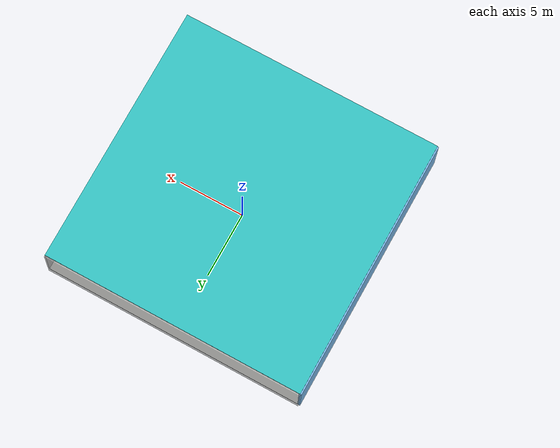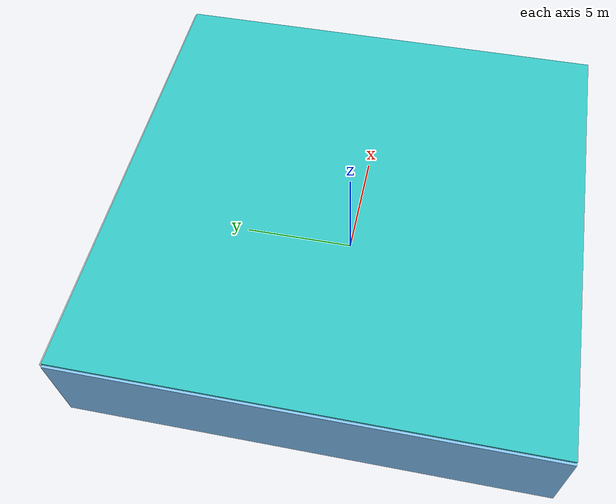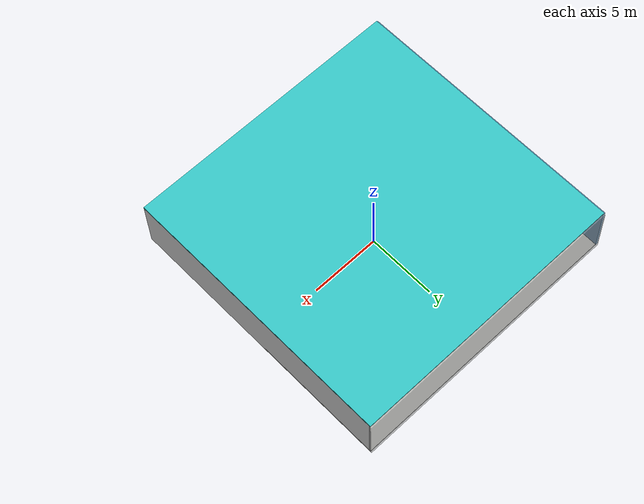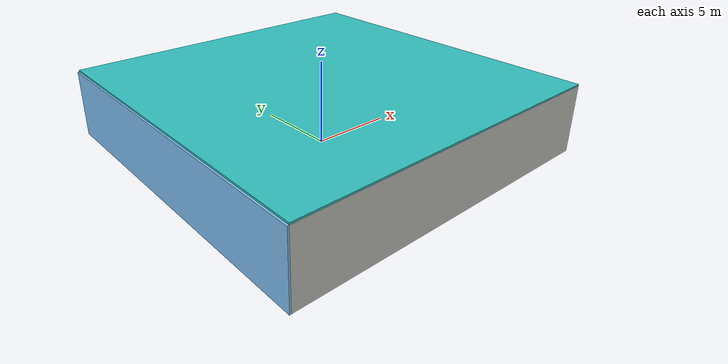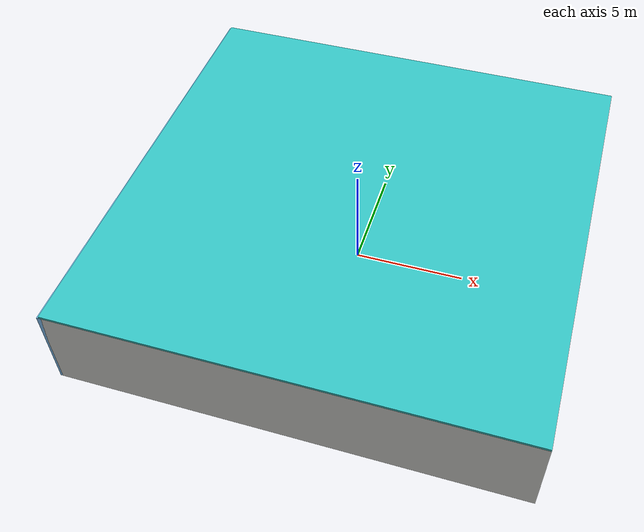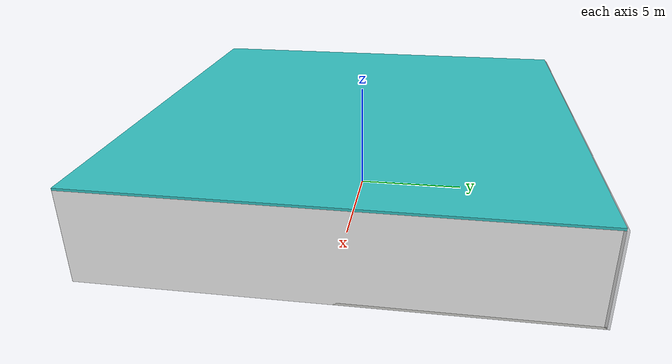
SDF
<sdf version="1.4">
 <world name="default">
  <physics type="ode">
   <max_step_size>0.001</max_step_size>
   <real_time_factor>1</real_time_factor>
   <real_time_update_rate>1000</real_time_update_rate>
   <gravity>0 0 -9.8</gravity>
  </physics>
  <scene><ambient>0.4 0.4 0.4 1</ambient><background>0.7 0.7 0.7 1</background><shadows>1</shadows></scene>
  <model name="Surrounding">
   <static>1</static>
   <link name="Ceiling">
    <collision name="Ceiling_Collision"><geometry><box><size>20 20 0.1</size></box></geometry></collision>
    <visual name="Ceiling_Visual">
     <geometry><box><size>20 20 0.1</size></box></geometry>
     <material>
      <script>
       <uri>file://media/materials/scripts/gazebo.material</uri>
       <name>Gazebo/TurquoiseGlowOutline</name>
      </script>
     </material>
    </visual>
    <pose>0 0 4.05 0 0 0</pose>
   </link>
   <link name="Wall_South">
    <collision name="Wall_South_Collision">
     <geometry><box><size>20 0 4</size></box></geometry>
     <pose>0 0 2 0 -0 0</pose>
    </collision>
    <visual name="Wall_South_Visual">
     <pose>0 0 2 0 -0 0</pose>
     <geometry><box><size>20 0 4</size></box></geometry>
     <material>
      <script><uri>file://media/materials/scripts/gazebo.material</uri><name>Gazebo/CeilingTiled</name></script>
     </material>
    </visual>
    <velocity_decay><linear>0</linear><angular>0</angular></velocity_decay>
    <pose>0 -10 0 0 -0 0</pose>
   </link>
   <link name="Wall_East">
    <collision name="Wall_21_Collision">
     <geometry><box><size>20 0 4</size></box></geometry>
     <pose>0 0 2 0 -0 0</pose>
    </collision>
    <visual name="Wall_21_Visual">
     <pose>0 0 2 0 -0 0</pose>
     <geometry><box><size>20 0 4</size></box></geometry>
     <material>
      <script><uri>file://media/materials/scripts/gazebo.material</uri><name>Gazebo/White</name></script>
     </material>
    </visual>
    <velocity_decay><linear>0</linear><angular>0</angular></velocity_decay>
    <pose>10 0 0 0 -0 1.5708</pose>
   </link>
   <link name="Wall_North">
    <collision name="Wall_22_Collision">
     <geometry><box><size>20 0.2 4</size></box></geometry>
     <pose>0 0 2 0 -0 0</pose>
    </collision>
    <visual name="Wall_22_Visual">
     <pose>0 0 2 0 -0 0</pose>
     <geometry><box><size>20 0.2 4</size></box></geometry>
     <material>
      <script><uri>file://media/materials/scripts/gazebo.material</uri><name>Gazebo/GreyTransparent</name></script>
     </material>
    </visual>
    <velocity_decay><linear>0</linear><angular>0</angular></velocity_decay>
    <pose>0 10 0 0 -0 0</pose>
   </link>
   <link name="Wall_West">
    <collision name="Wall_23_Collision">
     <geometry><box><size>20 0.2 4</size></box></geometry>
     <pose>0 0 2 0 -0 0</pose>
    </collision>
    <visual name="Wall_23_Visual">
     <pose>0 0 2 0 -0 0</pose>
     <geometry><box><size>20 0.2 4</size></box></geometry>
     <material>
      <script><uri>file://media/materials/scripts/gazebo.material</uri><name>Gazebo/SkyBlue</name></script>
     </material>
    </visual>
    <velocity_decay><linear>0</linear><angular>0</angular></velocity_decay>
    <pose>-10 0 0 0 0 -1.5708</pose>
   </link>
   <link name="Ground_link">
    <collision name="collision">
     <pose>0 0 .05 0 -0 0</pose>
     <geometry><box><size>20 20 0.1</size></box></geometry>
    </collision>
    <visual name="visual">
     <pose>0 0 .05 0 -0 0</pose>
     <geometry><box><size>20 20 0.1</size></box></geometry>
     <material>
      <script><uri>file://media/materials/scripts/gazebo.material</uri><name>Gazebo/CeilingTiled</name></script>
     </material>
    </visual>
   </link>
   <static>1</static>
  </model>
  <spherical_coordinates>
   <surface_model>EARTH_WGS84</surface_model>
   <latitude_deg>0</latitude_deg>
   <longitude_deg>0</longitude_deg>
   <elevation>0</elevation>
   <heading_deg>0</heading_deg>
  </spherical_coordinates>
  <light name="lightball_0" type="diffuse">
   <diffuse>0.8 0.8 0.8 1</diffuse>
   <specular>0.2 0.2 0.2 1</specular>
   <attenuation>
    <range>100</range>
    <constant>0.7</constant>
    <linear>0.01</linear>
    <quadratic>0.001</quadratic>
   </attenuation>
   <direction>-0.5 0.1 -0.9</direction>
   <pose>6.49750158752 8.86598290488 2.54202842266 0 0 0</pose>
  </light>
  <light name="lightball_1" type="diffuse">
   <diffuse>0.8 0.8 0.8 1</diffuse>
   <specular>0.2 0.2 0.2 1</specular>
   <attenuation>
    <range>100</range>
    <constant>0.7</constant>
    <linear>0.01</linear>
    <quadratic>0.001</quadratic>
   </attenuation>
   <direction>-0.5 0.1 -0.9</direction>
   <pose>3.74184505873 -3.48833227859 2.67319415808 0 0 0</pose>
  </light>
  <light name="lightball_2" type="diffuse">
   <diffuse>0.8 0.8 0.8 1</diffuse>
   <specular>0.2 0.2 0.2 1</specular>
   <attenuation>
    <range>100</range>
    <constant>0.7</constant>
    <linear>0.01</linear>
    <quadratic>0.001</quadratic>
   </attenuation>
   <direction>-0.5 0.1 -0.9</direction>
   <pose>9.11750516096 -0.587577490768 0.993347030701 0 0 0</pose>
  </light>
  <light name="lightball_3" type="diffuse">
   <diffuse>0.8 0.8 0.8 1</diffuse>
   <specular>0.2 0.2 0.2 1</specular>
   <attenuation>
    <range>100</range>
    <constant>0.7</constant>
    <linear>0.01</linear>
    <quadratic>0.001</quadratic>
   </attenuation>
   <direction>-0.5 0.1 -0.9</direction>
   <pose>0.466674660757 6.96673811062 3.56367832822 0 0 0</pose>
  </light>
  <light name="lightball_4" type="diffuse">
   <diffuse>0.8 0.8 0.8 1</diffuse>
   <specular>0.2 0.2 0.2 1</specular>
   <attenuation>
    <range>100</range>
    <constant>0.7</constant>
    <linear>0.01</linear>
    <quadratic>0.001</quadratic>
   </attenuation>
   <direction>-0.5 0.1 -0.9</direction>
   <pose>8.38438633544 6.06552104467 2.57947705053 0 0 0</pose>
  </light>
  <light name="lightball_5" type="diffuse">
   <diffuse>0.8 0.8 0.8 1</diffuse>
   <specular>0.2 0.2 0.2 1</specular>
   <attenuation>
    <range>100</range>
    <constant>0.7</constant>
    <linear>0.01</linear>
    <quadratic>0.001</quadratic>
   </attenuation>
   <direction>-0.5 0.1 -0.9</direction>
   <pose>-7.47156475037 -7.35182930533 1.13912591689 0 0 0</pose>
  </light>
  <light name="lightball_6" type="diffuse">
   <diffuse>0.8 0.8 0.8 1</diffuse>
   <specular>0.2 0.2 0.2 1</specular>
   <attenuation>
    <range>100</range>
    <constant>0.7</constant>
    <linear>0.01</linear>
    <quadratic>0.001</quadratic>
   </attenuation>
   <direction>-0.5 0.1 -0.9</direction>
   <pose>1.45438809574 -1.84692455371 1.34885809851 0 0 0</pose>
  </light>
  <light name="lightball_7" type="diffuse">
   <diffuse>0.8 0.8 0.8 1</diffuse>
   <specular>0.2 0.2 0.2 1</specular>
   <attenuation>
    <range>100</range>
    <constant>0.7</constant>
    <linear>0.01</linear>
    <quadratic>0.001</quadratic>
   </attenuation>
   <direction>-0.5 0.1 -0.9</direction>
   <pose>-0.452429667369 0.118675756618 2.29161940133 0 0 0</pose>
  </light>
  <light name="lightball_8" type="diffuse">
   <diffuse>0.8 0.8 0.8 1</diffuse>
   <specular>0.2 0.2 0.2 1</specular>
   <attenuation>
    <range>100</range>
    <constant>0.7</constant>
    <linear>0.01</linear>
    <quadratic>0.001</quadratic>
   </attenuation>
   <direction>-0.5 0.1 -0.9</direction>
   <pose>-4.64198762125 -1.85907424971 0.838424192151 0 0 0</pose>
  </light>
  <light name="lightball_9" type="diffuse">
   <diffuse>0.8 0.8 0.8 1</diffuse>
   <specular>0.2 0.2 0.2 1</specular>
   <attenuation>
    <range>100</range>
    <constant>0.7</constant>
    <linear>0.01</linear>
    <quadratic>0.001</quadratic>
   </attenuation>
   <direction>-0.5 0.1 -0.9</direction>
   <pose>-0.652354215749 -7.50345923406 2.29807492526 0 0 0</pose>
  </light>
  <light name="lightball_10" type="diffuse">
   <diffuse>0.8 0.8 0.8 1</diffuse>
   <specular>0.2 0.2 0.2 1</specular>
   <attenuation>
    <range>100</range>
    <constant>0.7</constant>
    <linear>0.01</linear>
    <quadratic>0.001</quadratic>
   </attenuation>
   <direction>-0.5 0.1 -0.9</direction>
   <pose>-0.228542609768 8.34010688018 2.42112397077 0 0 0</pose>
  </light>
  <include><uri>model://cabinet</uri><pose>-1.4618609995 0.90642468117 0 0 0 1.77838860908</pose></include>
  <include>
   <uri>model://construction_cone</uri>
   <pose>0.877278218442 -8.22383192437 0 0 0 1.23858171374</pose>
  </include>
 </world>
</sdf>

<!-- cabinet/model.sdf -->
<sdf version="1.5">
  <model name="cabinet">
    <static>true</static>
    <link name="cabinet_bottom_plate">
      <inertial>
        <pose>0 0 -1 0 0 0</pose>
        <inertia>
          <ixx>2.050000</ixx>
          <ixy>0</ixy>
          <ixz>0</ixz>
          <iyy>2.050000</iyy>
          <iyz>0</iyz>
          <izz>2.050000</izz>
        </inertia>
        <mass>25.000000</mass>
      </inertial>
      <collision name="cabinet_bottom_plate_geom">
        <pose>0 0 0.010000 0 0 0</pose>
        <geometry>
          <box>
            <size>0.450000 0.450000 0.020000</size>
          </box>
        </geometry>
      </collision>
      <visual name="cabinet_bottom_plate_geom_visual">
        <pose>0 0 0.010000 0 0 0</pose>
        <geometry>
          <box>
            <size>0.450000 0.450000 0.020000</size>
          </box>
        </geometry>
        <material>
          <script>
            <uri>model://media/materials/scripts/gazebo.material</uri>
            <name>Gazebo/Wood</name>
          </script>
        </material>
      </visual>
      <collision name="cabinet_bottom_plate_geom_cabinet_back_plate">
        <pose>0.235000 0 0.510000 0 0 0</pose>
        <geometry>
          <box>
            <size>0.020000 0.450000 1.020000</size>
          </box>
        </geometry>
      </collision>
      <visual name="cabinet_bottom_plate_geom_cabinet_back_plate_visual">
        <pose>0.235000 0 0.510000 0 0 0</pose>
        <geometry>
          <box>
            <size>0.020000 0.450000 1.020000</size>
          </box>
        </geometry>
        <material>
          <script>
            <uri>model://media/materials/scripts/gazebo.material</uri>
            <name>Gazebo/Wood</name>
          </script>
        </material>
      </visual>
      <collision name="cabinet_bottom_plate_geom_cabinet_left_plate">
        <pose>0 0.235000 0.510000 0 0 0</pose>
        <geometry>
          <box>
            <size>0.450000 0.020000 1.020000</size>
          </box>
        </geometry>
      </collision>
      <visual name="cabinet_bottom_plate_geom_cabinet_left_plate_visual">
        <pose>0 0.235000 0.510000 0 0 0</pose>
        <geometry>
          <box>
            <size>0.450000 0.020000 1.020000</size>
          </box>
        </geometry>
        <material>
          <script>
            <uri>model://media/materials/scripts/gazebo.material</uri>
            <name>Gazebo/Wood</name>
          </script>
        </material>
      </visual>
      <collision name="cabinet_bottom_plate_geom_cabinet_middle_plate">
        <pose>0 0 0.510000 0 0 0</pose>
        <geometry>
          <box>
            <size>0.450000 0.450000 0.020000</size>
          </box>
        </geometry>
      </collision>
      <visual name="cabinet_bottom_plate_geom_cabinet_middle_plate_visual">
        <pose>0 0 0.510000 0 0 0</pose>
        <geometry>
          <box>
            <size>0.450000 0.450000 0.020000</size>
          </box>
        </geometry>
        <material>
          <script>
            <uri>model://media/materials/scripts/gazebo.material</uri>
            <name>Gazebo/Wood</name>
          </script>
        </material>
      </visual>
      <collision name="cabinet_bottom_plate_geom_cabinet_right_plate">
        <pose>0 -0.235000 0.510000 0 0 0</pose>
        <geometry>
          <box>
            <size>0.450000 0.020000 1.020000</size>
          </box>
        </geometry>
      </collision>
      <visual name="cabinet_bottom_plate_geom_cabinet_right_plate_visual">
        <pose>0 -0.235000 0.510000 0 0 0</pose>
        <geometry>
          <box>
            <size>0.450000 0.020000 1.020000</size>
          </box>
        </geometry>
        <material>
          <script>
            <uri>model://media/materials/scripts/gazebo.material</uri>
            <name>Gazebo/Wood</name>
          </script>
        </material>
      </visual>
      <collision name="cabinet_bottom_plate_geom_cabinet_top_plate">
        <pose>0 0 1.010000 0 0 0</pose>
        <geometry>
          <box>
            <size>0.450000 0.450000 0.020000</size>
          </box>
        </geometry>
      </collision>
      <visual name="cabinet_bottom_plate_geom_cabinet_top_plate_visual">
        <pose>0 0 1.010000 0 0 0</pose>
        <geometry>
          <box>
            <size>0.450000 0.450000 0.020000</size>
          </box>
        </geometry>
        <material>
          <script>
            <uri>model://media/materials/scripts/gazebo.material</uri>
            <name>Gazebo/Wood</name>
          </script>
        </material>
      </visual>
    </link>
  </model>
</sdf>

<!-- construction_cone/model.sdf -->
<sdf version="1.5">
  <model name="Construction Cone">
    <link name="link">
      <collision name="collision">
        <geometry>
          <mesh>
            <scale>10 10 10</scale>
            <uri>file://isr-testbed/construction_cone/meshes/construction_cone.dae</uri>
          </mesh>
        </geometry>
      </collision>
      <visual name="visual">
        <geometry>
          <mesh>
            <scale>10 10 10</scale>
            <uri>file://isr-testbed/construction_cone/meshes/construction_cone.dae</uri>
          </mesh>
        </geometry>
      </visual>
    </link>
  </model>
</sdf>
